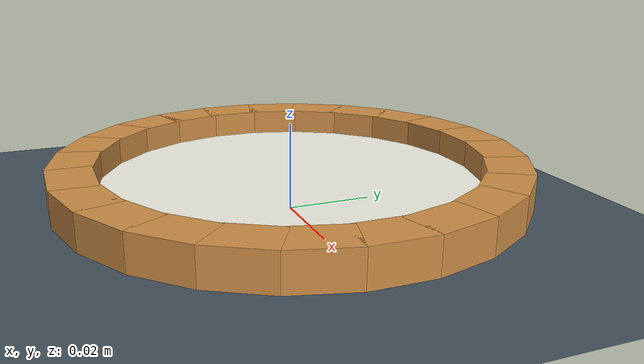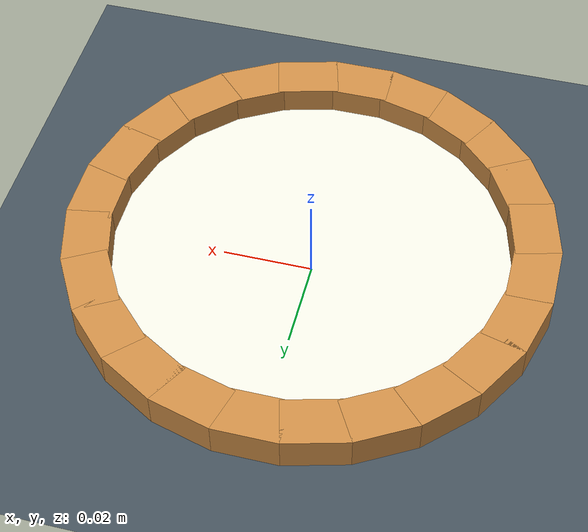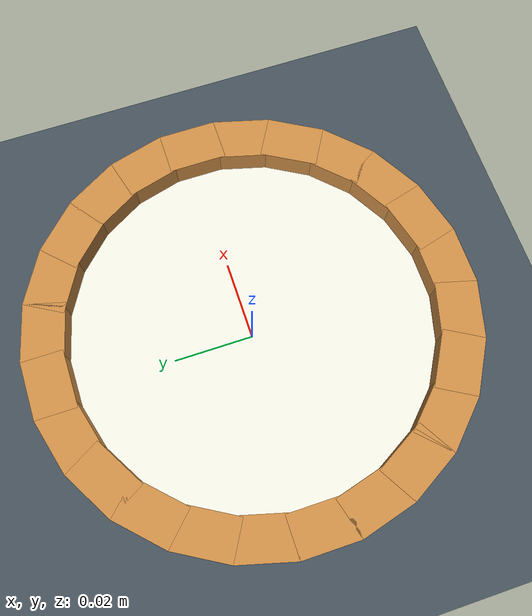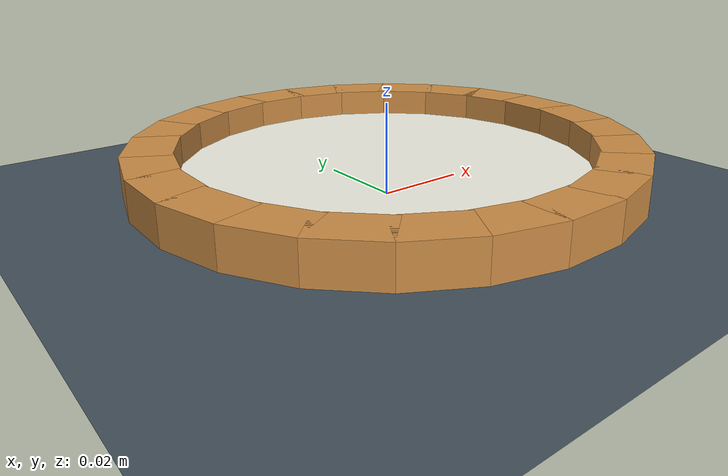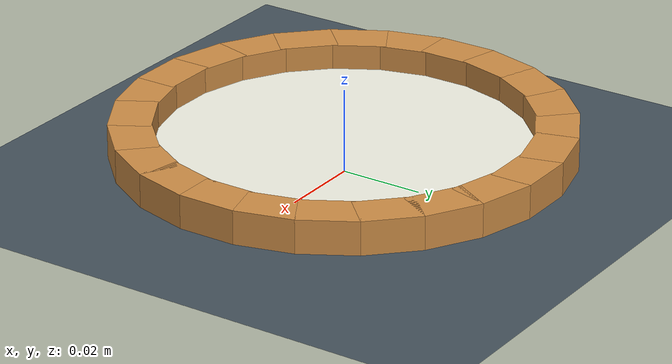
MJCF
<mujoco model="duet2_side_plate">
  <compiler angle="radian" autolimits="true" />
  <option timestep=".005" integrator="implicitfast" cone="elliptic" iterations="30" />
  <asset>
    <material name="base_motor_holder_so101_v1_material" rgba="1 0.82 0.12 1" />
    <material name="base_so101_v2_material" rgba="1 0.82 0.12 1" />
    <material name="sts3215_03a_v1_material" rgba="0.1 0.1 0.1 1" />
    <material name="waveshare_mounting_plate_so101_v2_material" rgba="1 0.82 0.12 1" />
    <material name="motor_holder_so101_base_v1_material" rgba="1 0.82 0.12 1" />
    <material name="rotation_pitch_so101_v1_material" rgba="1 0.82 0.12 1" />
    <material name="upper_arm_so101_v1_material" rgba="1 0.82 0.12 1" />
    <material name="under_arm_so101_v1_material" rgba="1 0.82 0.12 1" />
    <material name="motor_holder_so101_wrist_v1_material" rgba="1 0.82 0.12 1" />
    <material name="sts3215_03a_no_horn_v1_material" rgba="0.1 0.1 0.1 1.0" />
    <material name="wrist_roll_pitch_so101_v2_material" rgba="1 0.82 0.12 1" />
    <material name="wrist_roll_follower_so101_v1_material" rgba="1 0.82 0.12 1" />
    <material name="moving_jaw_so101_v1_material" rgba="1 0.82 0.12 1" />
    <texture name="sky" type="skybox" builtin="gradient" rgb1="0.15 0.21 0.29" rgb2="0.04 0.07 0.12" width="512" height="3072" />
    <texture name="floor_tex" type="2d" builtin="checker" width="512" height="512" rgb1="0.18 0.22 0.28" rgb2="0.20 0.24 0.30" />
    <material name="floor_mat" texture="floor_tex" texrepeat="8 8" reflectance="0.05" />
    <material name="table_mat" rgba=".69 .53 .37 1" specular="0.25" shininess="0.3" />
    <material name="edge_mat" rgba="0.07 0.12 0.17 1" specular="0.45" />
    <material name="tube_mat" rgba="0.71 0.88 0.94 0.78" specular="0.6" shininess="0.8" />
    <material name="ceramic" rgba=".95 .95 .90 1" specular=".3" shininess=".65" />
    <material name="plate_blue" rgba=".33 .51 .76 1" specular=".35" shininess=".65" />
    <material name="plate_gold" rgba=".81 .56 .28 1" specular=".35" shininess=".65" />
    <material name="mug_teal" rgba=".06 .53 .49 1" specular=".4" shininess=".65" />
    <material name="clear_glass" rgba=".66 .87 .92 .30" specular=".75" shininess=".65" />
    <material name="glass_rim" rgba=".62 .84 .89 .8" specular=".6" shininess=".65" />
    <material name="amber_glass" rgba=".55 .32 .13 .78" specular=".6" shininess=".65" />
    <material name="bottle_label" rgba=".96 .91 .72 1" specular=".1" shininess=".65" />
    <material name="steel" rgba=".72 .78 .83 1" specular=".85" shininess=".65" />
    <material name="drawer_wood" rgba=".37 .21 .12 1" specular=".2" shininess=".65" />
    <material name="drawer_lining" rgba=".20 .28 .27 1" specular=".1" shininess=".65" />
  </asset>
  <worldbody>
    <light pos="0 -.3 2" dir="0 0 -1" />
    <geom name="inspection_floor" type="plane" size=".4 .4 .05" pos="0 0 0.0" rgba=".27 .32 .36 1" />
    <body name="side_plate" pos="0 0 0.001" euler="0 0 0">
      <freejoint name="side_plate_free" />
      <inertial pos="0 0 0.006" mass="0.045" diaginertia="4.2675e-05 4.2675e-05 8.427e-05" />
      <geom name="side_plate_base" type="cylinder" size="0.045 0.003" pos="0 0 0.003" mass="0" friction="0.8 0.005 0.0001" condim="4" solref=".012 1" material="ceramic" />
      <geom name="side_plate_rim_0" type="box" size="0.005 0.0069775824 0.004" pos="0.048 0 0.008" mass="0" friction="0.8 0.005 0.0001" condim="4" solref=".012 1" euler="0 0 0" material="plate_gold" />
      <geom name="side_plate_rim_1" type="box" size="0.005 0.0069775824 0.004" pos="0.04636444 0.012423314 0.008" mass="0" friction="0.8 0.005 0.0001" condim="4" solref=".012 1" euler="0 0 0.26179939" material="plate_gold" />
      <geom name="side_plate_rim_2" type="box" size="0.005 0.0069775824 0.004" pos="0.041569219 0.024 0.008" mass="0" friction="0.8 0.005 0.0001" condim="4" solref=".012 1" euler="0 0 0.52359878" material="plate_gold" />
      <geom name="side_plate_rim_3" type="box" size="0.005 0.0069775824 0.004" pos="0.033941125 0.033941125 0.008" mass="0" friction="0.8 0.005 0.0001" condim="4" solref=".012 1" euler="0 0 0.78539816" material="plate_gold" />
      <geom name="side_plate_rim_4" type="box" size="0.005 0.0069775824 0.004" pos="0.024 0.041569219 0.008" mass="0" friction="0.8 0.005 0.0001" condim="4" solref=".012 1" euler="0 0 1.0471976" material="plate_gold" />
      <geom name="side_plate_rim_5" type="box" size="0.005 0.0069775824 0.004" pos="0.012423314 0.04636444 0.008" mass="0" friction="0.8 0.005 0.0001" condim="4" solref=".012 1" euler="0 0 1.3089969" material="plate_gold" />
      <geom name="side_plate_rim_6" type="box" size="0.005 0.0069775824 0.004" pos="2.9391523e-18 0.048 0.008" mass="0" friction="0.8 0.005 0.0001" condim="4" solref=".012 1" euler="0 0 1.5707963" material="plate_gold" />
      <geom name="side_plate_rim_7" type="box" size="0.005 0.0069775824 0.004" pos="-0.012423314 0.04636444 0.008" mass="0" friction="0.8 0.005 0.0001" condim="4" solref=".012 1" euler="0 0 1.8325957" material="plate_gold" />
      <geom name="side_plate_rim_8" type="box" size="0.005 0.0069775824 0.004" pos="-0.024 0.041569219 0.008" mass="0" friction="0.8 0.005 0.0001" condim="4" solref=".012 1" euler="0 0 2.0943951" material="plate_gold" />
      <geom name="side_plate_rim_9" type="box" size="0.005 0.0069775824 0.004" pos="-0.033941125 0.033941125 0.008" mass="0" friction="0.8 0.005 0.0001" condim="4" solref=".012 1" euler="0 0 2.3561945" material="plate_gold" />
      <geom name="side_plate_rim_10" type="box" size="0.005 0.0069775824 0.004" pos="-0.041569219 0.024 0.008" mass="0" friction="0.8 0.005 0.0001" condim="4" solref=".012 1" euler="0 0 2.6179939" material="plate_gold" />
      <geom name="side_plate_rim_11" type="box" size="0.005 0.0069775824 0.004" pos="-0.04636444 0.012423314 0.008" mass="0" friction="0.8 0.005 0.0001" condim="4" solref=".012 1" euler="0 0 2.8797933" material="plate_gold" />
      <geom name="side_plate_rim_12" type="box" size="0.005 0.0069775824 0.004" pos="-0.048 5.8783046e-18 0.008" mass="0" friction="0.8 0.005 0.0001" condim="4" solref=".012 1" euler="0 0 3.1415927" material="plate_gold" />
      <geom name="side_plate_rim_13" type="box" size="0.005 0.0069775824 0.004" pos="-0.04636444 -0.012423314 0.008" mass="0" friction="0.8 0.005 0.0001" condim="4" solref=".012 1" euler="0 0 3.403392" material="plate_gold" />
      <geom name="side_plate_rim_14" type="box" size="0.005 0.0069775824 0.004" pos="-0.041569219 -0.024 0.008" mass="0" friction="0.8 0.005 0.0001" condim="4" solref=".012 1" euler="0 0 3.6651914" material="plate_gold" />
      <geom name="side_plate_rim_15" type="box" size="0.005 0.0069775824 0.004" pos="-0.033941125 -0.033941125 0.008" mass="0" friction="0.8 0.005 0.0001" condim="4" solref=".012 1" euler="0 0 3.9269908" material="plate_gold" />
      <geom name="side_plate_rim_16" type="box" size="0.005 0.0069775824 0.004" pos="-0.024 -0.041569219 0.008" mass="0" friction="0.8 0.005 0.0001" condim="4" solref=".012 1" euler="0 0 4.1887902" material="plate_gold" />
      <geom name="side_plate_rim_17" type="box" size="0.005 0.0069775824 0.004" pos="-0.012423314 -0.04636444 0.008" mass="0" friction="0.8 0.005 0.0001" condim="4" solref=".012 1" euler="0 0 4.4505896" material="plate_gold" />
      <geom name="side_plate_rim_18" type="box" size="0.005 0.0069775824 0.004" pos="-8.817457e-18 -0.048 0.008" mass="0" friction="0.8 0.005 0.0001" condim="4" solref=".012 1" euler="0 0 4.712389" material="plate_gold" />
      <geom name="side_plate_rim_19" type="box" size="0.005 0.0069775824 0.004" pos="0.012423314 -0.04636444 0.008" mass="0" friction="0.8 0.005 0.0001" condim="4" solref=".012 1" euler="0 0 4.9741884" material="plate_gold" />
      <geom name="side_plate_rim_20" type="box" size="0.005 0.0069775824 0.004" pos="0.024 -0.041569219 0.008" mass="0" friction="0.8 0.005 0.0001" condim="4" solref=".012 1" euler="0 0 5.2359878" material="plate_gold" />
      <geom name="side_plate_rim_21" type="box" size="0.005 0.0069775824 0.004" pos="0.033941125 -0.033941125 0.008" mass="0" friction="0.8 0.005 0.0001" condim="4" solref=".012 1" euler="0 0 5.4977871" material="plate_gold" />
      <geom name="side_plate_rim_22" type="box" size="0.005 0.0069775824 0.004" pos="0.041569219 -0.024 0.008" mass="0" friction="0.8 0.005 0.0001" condim="4" solref=".012 1" euler="0 0 5.7595865" material="plate_gold" />
      <geom name="side_plate_rim_23" type="box" size="0.005 0.0069775824 0.004" pos="0.04636444 -0.012423314 0.008" mass="0" friction="0.8 0.005 0.0001" condim="4" solref=".012 1" euler="0 0 6.0213859" material="plate_gold" />
      <site name="side_plate_grasp" pos="0 -0.048 0.009" size=".002" group="4" rgba="0 1 0 1" />
    </body>
  </worldbody>
</mujoco>
